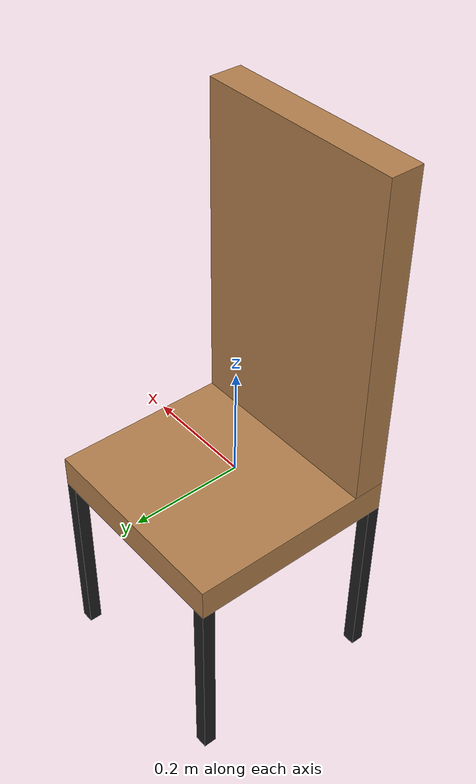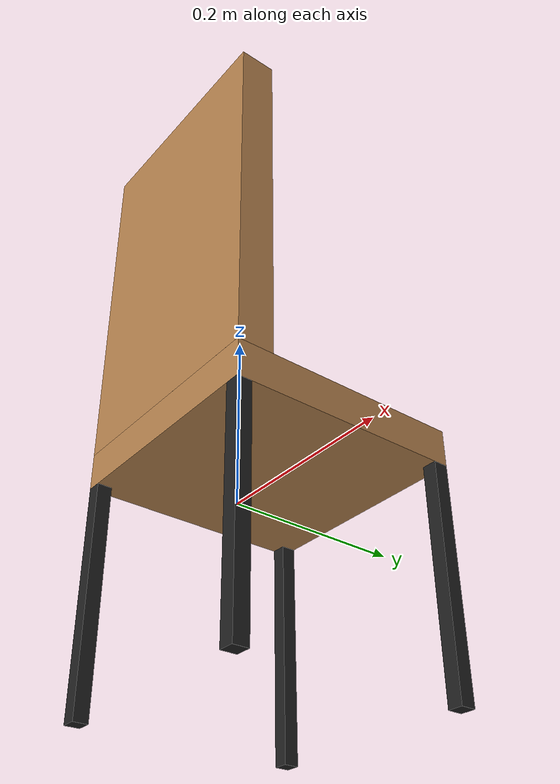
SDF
<?xml version='1.0'?>
<sdf version='1.7'>
  <model name='Chair'>
    <link name='link_0'>
      <inertial>
        <mass>0.202266</mass>
        <inertia>
          <ixx>0.017545</ixx>
          <ixy>0</ixy>
          <ixz>0</ixz>
          <iyy>0.017545</iyy>
          <iyz>0</iyz>
          <izz>0.033711</izz>
        </inertia>
        <pose>0 0 0 0 -0 0</pose>
      </inertial>
      <pose>-0.15 0.15 0.175 0 -0 0</pose>
      <gravity>1</gravity>
      <self_collide>0</self_collide>
      <kinematic>0</kinematic>
      <enable_wind>0</enable_wind>
      <visual name='visual'>
        <pose>0 0 0 0 -0 0</pose>
        <geometry>
          <box>
            <size>0.32 0.32 0.05</size>
          </box>
        </geometry>
        <material>
          <lighting>1</lighting>
          <script>
            <uri>file://media/materials/scripts/gazebo.material</uri>
            <name>Gazebo/Wood</name>
          </script>
          <shader type='pixel'>
            <normal_map>__default__</normal_map>
          </shader>
          <ambient>0.3 0.3 0.3 1</ambient>
          <diffuse>0.7 0.7 0.7 1</diffuse>
          <specular>0.01 0.01 0.01 1</specular>
          <emissive>0 0 0 1</emissive>
        </material>
        <transparency>0</transparency>
        <cast_shadows>1</cast_shadows>
      </visual>
      <collision name='collision'>
        <laser_retro>0</laser_retro>
        <max_contacts>10</max_contacts>
        <pose>0 0 0 0 -0 0</pose>
        <geometry>
          <box>
            <size>0.32 0.32 0.05</size>
          </box>
        </geometry>
        <surface>
          <friction>
            <ode>
              <mu>1</mu>
              <mu2>1</mu2>
              <fdir1>0 0 0</fdir1>
              <slip1>0</slip1>
              <slip2>0</slip2>
            </ode>
            <torsional>
              <coefficient>1</coefficient>
              <patch_radius>0</patch_radius>
              <surface_radius>0</surface_radius>
              <use_patch_radius>1</use_patch_radius>
              <ode>
                <slip>0</slip>
              </ode>
            </torsional>
          </friction>
          <bounce>
            <restitution_coefficient>0</restitution_coefficient>
            <threshold>1e+06</threshold>
          </bounce>
          <contact>
            <collide_without_contact>0</collide_without_contact>
            <collide_without_contact_bitmask>1</collide_without_contact_bitmask>
            <collide_bitmask>1</collide_bitmask>
            <ode>
              <soft_cfm>0</soft_cfm>
              <soft_erp>0.2</soft_erp>
              <kp>1e+13</kp>
              <kd>1</kd>
              <max_vel>0.01</max_vel>
              <min_depth>0</min_depth>
            </ode>
            <bullet>
              <split_impulse>1</split_impulse>
              <split_impulse_penetration_threshold>-0.01</split_impulse_penetration_threshold>
              <soft_cfm>0</soft_cfm>
              <soft_erp>0.2</soft_erp>
              <kp>1e+13</kp>
              <kd>1</kd>
            </bullet>
          </contact>
        </surface>
      </collision>
    </link>
    <link name='link_1'>
      <inertial>
        <mass>1</mass>
        <inertia>
          <ixx>0.166667</ixx>
          <ixy>0</ixy>
          <ixz>0</ixz>
          <iyy>0.166667</iyy>
          <iyz>0</iyz>
          <izz>0.166667</izz>
        </inertia>
        <pose>0 0 0 0 -0 0</pose>
      </inertial>
      <pose>-0.15 0.015 0.45 0 0 -0.000261</pose>
      <gravity>1</gravity>
      <self_collide>0</self_collide>
      <kinematic>0</kinematic>
      <enable_wind>0</enable_wind>
      <visual name='visual'>
        <pose>0 0 0 0 -0 0</pose>
        <geometry>
          <box>
            <size>0.32 0.05 0.5</size>
          </box>
        </geometry>
        <material>
          <lighting>1</lighting>
          <script>
            <uri>file://media/materials/scripts/gazebo.material</uri>
            <name>Gazebo/Wood</name>
          </script>
          <shader type='pixel'>
            <normal_map>__default__</normal_map>
          </shader>
          <ambient>0.3 0.3 0.3 1</ambient>
          <diffuse>0.7 0.7 0.7 1</diffuse>
          <specular>0.01 0.01 0.01 1</specular>
          <emissive>0 0 0 1</emissive>
        </material>
        <transparency>0</transparency>
        <cast_shadows>1</cast_shadows>
      </visual>
      <collision name='collision'>
        <laser_retro>0</laser_retro>
        <max_contacts>10</max_contacts>
        <pose>0 0 0 0 -0 0</pose>
        <geometry>
          <box>
            <size>0.32 0.05 0.5</size>
          </box>
        </geometry>
        <surface>
          <friction>
            <ode>
              <mu>1</mu>
              <mu2>1</mu2>
              <fdir1>0 0 0</fdir1>
              <slip1>0</slip1>
              <slip2>0</slip2>
            </ode>
            <torsional>
              <coefficient>1</coefficient>
              <patch_radius>0</patch_radius>
              <surface_radius>0</surface_radius>
              <use_patch_radius>1</use_patch_radius>
              <ode>
                <slip>0</slip>
              </ode>
            </torsional>
          </friction>
          <bounce>
            <restitution_coefficient>0</restitution_coefficient>
            <threshold>1e+06</threshold>
          </bounce>
          <contact>
            <collide_without_contact>0</collide_without_contact>
            <collide_without_contact_bitmask>1</collide_without_contact_bitmask>
            <collide_bitmask>1</collide_bitmask>
            <ode>
              <soft_cfm>0</soft_cfm>
              <soft_erp>0.2</soft_erp>
              <kp>1e+13</kp>
              <kd>1</kd>
              <max_vel>0.01</max_vel>
              <min_depth>0</min_depth>
            </ode>
            <bullet>
              <split_impulse>1</split_impulse>
              <split_impulse_penetration_threshold>-0.01</split_impulse_penetration_threshold>
              <soft_cfm>0</soft_cfm>
              <soft_erp>0.2</soft_erp>
              <kp>1e+13</kp>
              <kd>1</kd>
            </bullet>
          </contact>
        </surface>
      </collision>
    </link>
    <link name='link_clone_0'>
      <inertial>
        <mass>0.621796</mass>
        <inertia>
          <ixx>0.00704924</ixx>
          <ixy>0</ixy>
          <ixz>0</ixz>
          <iyy>0.00719736</iyy>
          <iyz>0</iyz>
          <izz>0.00068658</izz>
        </inertia>
        <pose>0 0 0 0 -0 0</pose>
      </inertial>
      <self_collide>0</self_collide>
      <enable_wind>0</enable_wind>
      <kinematic>0</kinematic>
      <pose>-0.3 0 0 0 -0 0</pose>
      <gravity>1</gravity>
      <visual name='visual'>
        <geometry>
          <box>
            <size>0.02 0.02 0.3</size>
          </box>
        </geometry>
        <material>
          <script>
            <name>Gazebo/Black</name>
            <uri>file://media/materials/scripts/gazebo.material</uri>
          </script>
          <shader type='pixel'>
            <normal_map>__default__</normal_map>
          </shader>
          <ambient>0.3 0.3 0.3 1</ambient>
          <diffuse>0 0 0 1</diffuse>
          <specular>0.01 0.01 0.01 1</specular>
          <emissive>0 0 0 1</emissive>
        </material>
        <pose>0 0 0 0 -0 0</pose>
        <transparency>0</transparency>
        <cast_shadows>1</cast_shadows>
      </visual>
      <collision name='collision'>
        <laser_retro>0</laser_retro>
        <max_contacts>10</max_contacts>
        <pose>0 0 0 0 -0 0</pose>
        <geometry>
          <box>
            <size>0.02 0.02 0.3</size>
          </box>
        </geometry>
        <surface>
          <friction>
            <ode>
              <mu>1</mu>
              <mu2>1</mu2>
              <fdir1>0 0 0</fdir1>
              <slip1>0</slip1>
              <slip2>0</slip2>
            </ode>
            <torsional>
              <coefficient>1</coefficient>
              <patch_radius>0</patch_radius>
              <surface_radius>0</surface_radius>
              <use_patch_radius>1</use_patch_radius>
              <ode>
                <slip>0</slip>
              </ode>
            </torsional>
          </friction>
          <bounce>
            <restitution_coefficient>0</restitution_coefficient>
            <threshold>1e+06</threshold>
          </bounce>
          <contact>
            <collide_without_contact>0</collide_without_contact>
            <collide_without_contact_bitmask>1</collide_without_contact_bitmask>
            <collide_bitmask>1</collide_bitmask>
            <ode>
              <soft_cfm>0</soft_cfm>
              <soft_erp>0.2</soft_erp>
              <kp>1e+13</kp>
              <kd>1</kd>
              <max_vel>0.01</max_vel>
              <min_depth>0</min_depth>
            </ode>
            <bullet>
              <split_impulse>1</split_impulse>
              <split_impulse_penetration_threshold>-0.01</split_impulse_penetration_threshold>
              <soft_cfm>0</soft_cfm>
              <soft_erp>0.2</soft_erp>
              <kp>1e+13</kp>
              <kd>1</kd>
            </bullet>
          </contact>
        </surface>
      </collision>
    </link>
    <link name='link_clone_0_clone'>
      <inertial>
        <mass>0.621796</mass>
        <inertia>
          <ixx>0.00704924</ixx>
          <ixy>0</ixy>
          <ixz>0</ixz>
          <iyy>0.00719736</iyy>
          <iyz>0</iyz>
          <izz>0.00068658</izz>
        </inertia>
        <pose>0 0 0 0 -0 0</pose>
      </inertial>
      <self_collide>0</self_collide>
      <enable_wind>0</enable_wind>
      <kinematic>0</kinematic>
      <pose>0 0.3 0 0 0 -0.000261</pose>
      <gravity>1</gravity>
      <visual name='visual'>
        <geometry>
          <box>
            <size>0.02 0.02 0.3</size>
          </box>
        </geometry>
        <material>
          <script>
            <name>Gazebo/Black</name>
            <uri>file://media/materials/scripts/gazebo.material</uri>
          </script>
          <shader type='pixel'>
            <normal_map>__default__</normal_map>
          </shader>
          <ambient>0.3 0.3 0.3 1</ambient>
          <diffuse>0 0 0 1</diffuse>
          <specular>0.01 0.01 0.01 1</specular>
          <emissive>0 0 0 1</emissive>
        </material>
        <pose>0 0 0 0 -0 0</pose>
        <transparency>0</transparency>
        <cast_shadows>1</cast_shadows>
      </visual>
      <collision name='collision'>
        <laser_retro>0</laser_retro>
        <max_contacts>10</max_contacts>
        <pose>0 0 0 0 -0 0</pose>
        <geometry>
          <box>
            <size>0.02 0.02 0.3</size>
          </box>
        </geometry>
        <surface>
          <friction>
            <ode>
              <mu>1</mu>
              <mu2>1</mu2>
              <fdir1>0 0 0</fdir1>
              <slip1>0</slip1>
              <slip2>0</slip2>
            </ode>
            <torsional>
              <coefficient>1</coefficient>
              <patch_radius>0</patch_radius>
              <surface_radius>0</surface_radius>
              <use_patch_radius>1</use_patch_radius>
              <ode>
                <slip>0</slip>
              </ode>
            </torsional>
          </friction>
          <bounce>
            <restitution_coefficient>0</restitution_coefficient>
            <threshold>1e+06</threshold>
          </bounce>
          <contact>
            <collide_without_contact>0</collide_without_contact>
            <collide_without_contact_bitmask>1</collide_without_contact_bitmask>
            <collide_bitmask>1</collide_bitmask>
            <ode>
              <soft_cfm>0</soft_cfm>
              <soft_erp>0.2</soft_erp>
              <kp>1e+13</kp>
              <kd>1</kd>
              <max_vel>0.01</max_vel>
              <min_depth>0</min_depth>
            </ode>
            <bullet>
              <split_impulse>1</split_impulse>
              <split_impulse_penetration_threshold>-0.01</split_impulse_penetration_threshold>
              <soft_cfm>0</soft_cfm>
              <soft_erp>0.2</soft_erp>
              <kp>1e+13</kp>
              <kd>1</kd>
            </bullet>
          </contact>
        </surface>
      </collision>
    </link>
    <link name='link_clone_0_clone_0'>
      <inertial>
        <mass>0.621796</mass>
        <inertia>
          <ixx>0.00704924</ixx>
          <ixy>0</ixy>
          <ixz>0</ixz>
          <iyy>0.00719736</iyy>
          <iyz>0</iyz>
          <izz>0.00068658</izz>
        </inertia>
        <pose>0 0 0 0 -0 0</pose>
      </inertial>
      <self_collide>0</self_collide>
      <enable_wind>0</enable_wind>
      <kinematic>0</kinematic>
      <pose>-0.3 0.3 0 0 0 -0.000261</pose>
      <gravity>1</gravity>
      <visual name='visual'>
        <geometry>
          <box>
            <size>0.02 0.02 0.3</size>
          </box>
        </geometry>
        <material>
          <script>
            <name>Gazebo/Black</name>
            <uri>file://media/materials/scripts/gazebo.material</uri>
          </script>
          <shader type='pixel'>
            <normal_map>__default__</normal_map>
          </shader>
          <ambient>0.3 0.3 0.3 1</ambient>
          <diffuse>0 0 0 1</diffuse>
          <specular>0.01 0.01 0.01 1</specular>
          <emissive>0 0 0 1</emissive>
        </material>
        <pose>0 0 0 0 -0 0</pose>
        <transparency>0</transparency>
        <cast_shadows>1</cast_shadows>
      </visual>
      <collision name='collision'>
        <laser_retro>0</laser_retro>
        <max_contacts>10</max_contacts>
        <pose>0 0 0 0 -0 0</pose>
        <geometry>
          <box>
            <size>0.02 0.02 0.3</size>
          </box>
        </geometry>
        <surface>
          <friction>
            <ode>
              <mu>1</mu>
              <mu2>1</mu2>
              <fdir1>0 0 0</fdir1>
              <slip1>0</slip1>
              <slip2>0</slip2>
            </ode>
            <torsional>
              <coefficient>1</coefficient>
              <patch_radius>0</patch_radius>
              <surface_radius>0</surface_radius>
              <use_patch_radius>1</use_patch_radius>
              <ode>
                <slip>0</slip>
              </ode>
            </torsional>
          </friction>
          <bounce>
            <restitution_coefficient>0</restitution_coefficient>
            <threshold>1e+06</threshold>
          </bounce>
          <contact>
            <collide_without_contact>0</collide_without_contact>
            <collide_without_contact_bitmask>1</collide_without_contact_bitmask>
            <collide_bitmask>1</collide_bitmask>
            <ode>
              <soft_cfm>0</soft_cfm>
              <soft_erp>0.2</soft_erp>
              <kp>1e+13</kp>
              <kd>1</kd>
              <max_vel>0.01</max_vel>
              <min_depth>0</min_depth>
            </ode>
            <bullet>
              <split_impulse>1</split_impulse>
              <split_impulse_penetration_threshold>-0.01</split_impulse_penetration_threshold>
              <soft_cfm>0</soft_cfm>
              <soft_erp>0.2</soft_erp>
              <kp>1e+13</kp>
              <kd>1</kd>
            </bullet>
          </contact>
        </surface>
      </collision>
    </link>
    <link name='link_clone_0_clone_1'>
      <inertial>
        <mass>0.621796</mass>
        <inertia>
          <ixx>0.00704924</ixx>
          <ixy>0</ixy>
          <ixz>0</ixz>
          <iyy>0.00719736</iyy>
          <iyz>0</iyz>
          <izz>0.00068658</izz>
        </inertia>
        <pose>0 0 0 0 -0 0</pose>
      </inertial>
      <self_collide>0</self_collide>
      <enable_wind>0</enable_wind>
      <kinematic>0</kinematic>
      <pose>0 0 0 0 -0 0</pose>
      <gravity>1</gravity>
      <visual name='visual'>
        <geometry>
          <box>
            <size>0.02 0.02 0.3</size>
          </box>
        </geometry>
        <material>
          <script>
            <name>Gazebo/Black</name>
            <uri>file://media/materials/scripts/gazebo.material</uri>
          </script>
          <shader type='pixel'>
            <normal_map>__default__</normal_map>
          </shader>
          <ambient>0.3 0.3 0.3 1</ambient>
          <diffuse>0 0 0 1</diffuse>
          <specular>0.01 0.01 0.01 1</specular>
          <emissive>0 0 0 1</emissive>
        </material>
        <pose>0 0 0 0 -0 0</pose>
        <transparency>0</transparency>
        <cast_shadows>1</cast_shadows>
      </visual>
      <collision name='collision'>
        <laser_retro>0</laser_retro>
        <max_contacts>10</max_contacts>
        <pose>0 0 0 0 -0 0</pose>
        <geometry>
          <box>
            <size>0.02 0.02 0.3</size>
          </box>
        </geometry>
        <surface>
          <friction>
            <ode>
              <mu>1</mu>
              <mu2>1</mu2>
              <fdir1>0 0 0</fdir1>
              <slip1>0</slip1>
              <slip2>0</slip2>
            </ode>
            <torsional>
              <coefficient>1</coefficient>
              <patch_radius>0</patch_radius>
              <surface_radius>0</surface_radius>
              <use_patch_radius>1</use_patch_radius>
              <ode>
                <slip>0</slip>
              </ode>
            </torsional>
          </friction>
          <bounce>
            <restitution_coefficient>0</restitution_coefficient>
            <threshold>1e+06</threshold>
          </bounce>
          <contact>
            <collide_without_contact>0</collide_without_contact>
            <collide_without_contact_bitmask>1</collide_without_contact_bitmask>
            <collide_bitmask>1</collide_bitmask>
            <ode>
              <soft_cfm>0</soft_cfm>
              <soft_erp>0.2</soft_erp>
              <kp>1e+13</kp>
              <kd>1</kd>
              <max_vel>0.01</max_vel>
              <min_depth>0</min_depth>
            </ode>
            <bullet>
              <split_impulse>1</split_impulse>
              <split_impulse_penetration_threshold>-0.01</split_impulse_penetration_threshold>
              <soft_cfm>0</soft_cfm>
              <soft_erp>0.2</soft_erp>
              <kp>1e+13</kp>
              <kd>1</kd>
            </bullet>
          </contact>
        </surface>
      </collision>
    </link>
    <static>1</static>
    <allow_auto_disable>1</allow_auto_disable>
  </model>
</sdf>
